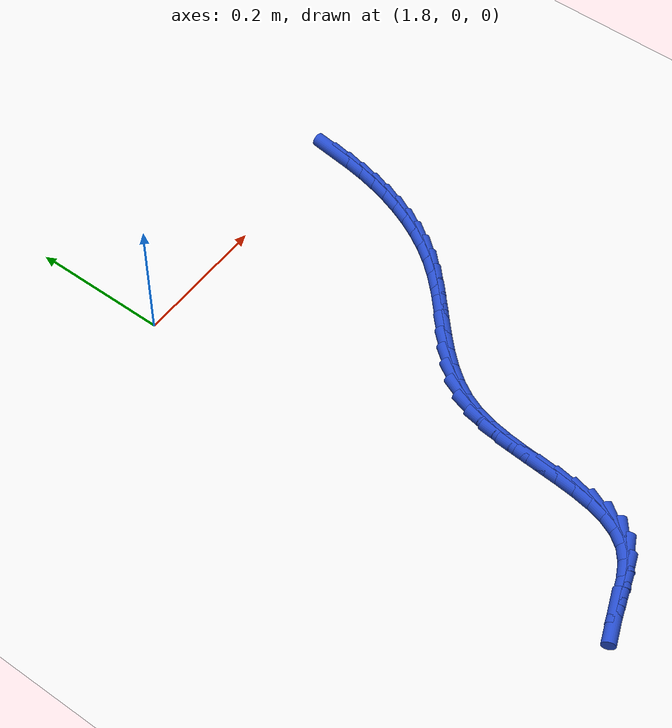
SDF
<sdf version="1.6">
 <world name="default">
  <model name="ground_plane">
   <static>1</static>
   <link name="link">
    <collision name="collision">
     <geometry><plane><normal>0 0 1</normal><size>100 100</size></plane></geometry>
     <surface><friction><ode><mu>100</mu><mu2>50</mu2></ode></friction></surface>
    </collision>
    <visual name="visual">
     <cast_shadows>0</cast_shadows>
     <geometry><plane><normal>0 0 1</normal><size>100 100</size></plane></geometry>
     <material>
      <script><uri>file://media/materials/scripts/gazebo.material</uri><name>Gazebo/WhiteGlow</name></script>
     </material>
    </visual>
   </link>
  </model>
  <model name="line">
   <link name="link_136">
    <pose>2.19558359753591 -0.015618624663382843 0.01 0 1.57 1.4524996347719075</pose>
    <collision name="collision">
     <geometry><cylinder><radius>0.01</radius><length>0.08</length></cylinder></geometry>
    </collision>
    <visual name="visual">
     <material>
      <script><name>Gazebo/Blue</name><uri>file://media/materials/scripts/gazebo.material</uri></script>
     </material>
     <geometry><cylinder><radius>0.01</radius><length>0.08</length></cylinder></geometry>
    </visual>
   </link>
   <link name="link_137">
    <pose>2.1923405038532535 -0.04290553715427792 0.01 0 1.57 1.4028530604011398</pose>
    <collision name="collision">
     <geometry><cylinder><radius>0.01</radius><length>0.08</length></cylinder></geometry>
    </collision>
    <visual name="visual">
     <material>
      <script><name>Gazebo/Blue</name><uri>file://media/materials/scripts/gazebo.material</uri></script>
     </material>
     <geometry><cylinder><radius>0.01</radius><length>0.08</length></cylinder></geometry>
    </visual>
   </link>
   <link name="link_138">
    <pose>2.187783177100298 -0.06978604085404472 0.01 0 1.57 1.3496142610618556</pose>
    <collision name="collision">
     <geometry><cylinder><radius>0.01</radius><length>0.08</length></cylinder></geometry>
    </collision>
    <visual name="visual">
     <material>
      <script><name>Gazebo/Blue</name><uri>file://media/materials/scripts/gazebo.material</uri></script>
     </material>
     <geometry><cylinder><radius>0.01</radius><length>0.08</length></cylinder></geometry>
    </visual>
   </link>
   <link name="link_139">
    <pose>2.1818526845986206 -0.09616008728448848 0.01 0 1.57 1.2924810082934508</pose>
    <collision name="collision">
     <geometry><cylinder><radius>0.01</radius><length>0.08</length></cylinder></geometry>
    </collision>
    <visual name="visual">
     <material>
      <script><name>Gazebo/Blue</name><uri>file://media/materials/scripts/gazebo.material</uri></script>
     </material>
     <geometry><cylinder><radius>0.01</radius><length>0.08</length></cylinder></geometry>
    </visual>
   </link>
   <link name="link_140">
    <pose>2.174490093669799 -0.12192762796741696 0.01 0 1.57 1.231199729762752</pose>
    <collision name="collision">
     <geometry><cylinder><radius>0.01</radius><length>0.08</length></cylinder></geometry>
    </collision>
    <visual name="visual">
     <material>
      <script><name>Gazebo/Blue</name><uri>file://media/materials/scripts/gazebo.material</uri></script>
     </material>
     <geometry><cylinder><radius>0.01</radius><length>0.08</length></cylinder></geometry>
    </visual>
   </link>
   <link name="link_141">
    <pose>2.165636471635413 -0.14698861442463787 0.01 0 1.57 1.1655963210874438</pose>
    <collision name="collision">
     <geometry><cylinder><radius>0.01</radius><length>0.08</length></cylinder></geometry>
    </collision>
    <visual name="visual">
     <material>
      <script><name>Gazebo/Blue</name><uri>file://media/materials/scripts/gazebo.material</uri></script>
     </material>
     <geometry><cylinder><radius>0.01</radius><length>0.08</length></cylinder></geometry>
    </visual>
   </link>
   <link name="link_142">
    <pose>2.155232885817041 -0.1712429981779567 0.01 0 1.57 1.0956136193510864</pose>
    <collision name="collision">
     <geometry><cylinder><radius>0.01</radius><length>0.08</length></cylinder></geometry>
    </collision>
    <visual name="visual">
     <material>
      <script><name>Gazebo/Blue</name><uri>file://media/materials/scripts/gazebo.material</uri></script>
     </material>
     <geometry><cylinder><radius>0.01</radius><length>0.08</length></cylinder></geometry>
    </visual>
   </link>
   <link name="link_143">
    <pose>2.14322040353626 -0.19459073074918187 0.01 0 1.57 1.02135256360449</pose>
    <collision name="collision">
     <geometry><cylinder><radius>0.01</radius><length>0.08</length></cylinder></geometry>
    </collision>
    <visual name="visual">
     <material>
      <script><name>Gazebo/Blue</name><uri>file://media/materials/scripts/gazebo.material</uri></script>
     </material>
     <geometry><cylinder><radius>0.01</radius><length>0.08</length></cylinder></geometry>
    </visual>
   </link>
   <link name="link_144">
    <pose>2.1295400921146483 -0.2169317636601188 0.01 0 1.57 0.9431111247488517</pose>
    <collision name="collision">
     <geometry><cylinder><radius>0.01</radius><length>0.08</length></cylinder></geometry>
    </collision>
    <visual name="visual">
     <material>
      <script><name>Gazebo/Blue</name><uri>file://media/materials/scripts/gazebo.material</uri></script>
     </material>
     <geometry><cylinder><radius>0.01</radius><length>0.08</length></cylinder></geometry>
    </visual>
   </link>
   <link name="link_145">
    <pose>2.114133018873785 -0.238166048432576 0.01 0 1.57 0.8619540318517869</pose>
    <collision name="collision">
     <geometry><cylinder><radius>0.01</radius><length>0.08</length></cylinder></geometry>
    </collision>
    <visual name="visual">
     <material>
      <script><name>Gazebo/Blue</name><uri>file://media/materials/scripts/gazebo.material</uri></script>
     </material>
     <geometry><cylinder><radius>0.01</radius><length>0.08</length></cylinder></geometry>
    </visual>
   </link>
   <link name="link_146">
    <pose>2.0969516317332553 -0.25820223887145366 0.01 0 1.57 0.7924416284773659</pose>
    <collision name="collision">
     <geometry><cylinder><radius>0.01</radius><length>0.08</length></cylinder></geometry>
    </collision>
    <visual name="visual">
     <material>
      <script><name>Gazebo/Blue</name><uri>file://media/materials/scripts/gazebo.material</uri></script>
     </material>
     <geometry><cylinder><radius>0.01</radius><length>0.08</length></cylinder></geometry>
    </visual>
   </link>
   <link name="link_147">
    <pose>2.078244134343805 -0.27717514122968734 0.01 0 1.57 0.7489665713247079</pose>
    <collision name="collision">
     <geometry><cylinder><radius>0.01</radius><length>0.08</length></cylinder></geometry>
    </collision>
    <visual name="visual">
     <material>
      <script><name>Gazebo/Blue</name><uri>file://media/materials/scripts/gazebo.material</uri></script>
     </material>
     <geometry><cylinder><radius>0.01</radius><length>0.08</length></cylinder></geometry>
    </visual>
   </link>
   <link name="link_148">
    <pose>2.058574708271357 -0.2954611772946288 0.01 0 1.57 0.7311821837393285</pose>
    <collision name="collision">
     <geometry><cylinder><radius>0.01</radius><length>0.08</length></cylinder></geometry>
    </collision>
    <visual name="visual">
     <material>
      <script><name>Gazebo/Blue</name><uri>file://media/materials/scripts/gazebo.material</uri></script>
     </material>
     <geometry><cylinder><radius>0.01</radius><length>0.08</length></cylinder></geometry>
    </visual>
   </link>
   <link name="link_149">
    <pose>2.038522965663412 -0.3134485679953926 0.01 0 1.57 0.738572030786506</pose>
    <collision name="collision">
     <geometry><cylinder><radius>0.01</radius><length>0.08</length></cylinder></geometry>
    </collision>
    <visual name="visual">
     <material>
      <script><name>Gazebo/Blue</name><uri>file://media/materials/scripts/gazebo.material</uri></script>
     </material>
     <geometry><cylinder><radius>0.01</radius><length>0.08</length></cylinder></geometry>
    </visual>
   </link>
   <link name="link_150">
    <pose>2.0186685186674715 -0.3315255342610915 0.01 0 1.57 0.7715073614926533</pose>
    <collision name="collision">
     <geometry><cylinder><radius>0.01</radius><length>0.08</length></cylinder></geometry>
    </collision>
    <visual name="visual">
     <material>
      <script><name>Gazebo/Blue</name><uri>file://media/materials/scripts/gazebo.material</uri></script>
     </material>
     <geometry><cylinder><radius>0.01</radius><length>0.08</length></cylinder></geometry>
    </visual>
   </link>
   <link name="link_151">
    <pose>1.9995909794310376 -0.3500802970208393 0.01 0 1.57 0.8311303500965728</pose>
    <collision name="collision">
     <geometry><cylinder><radius>0.01</radius><length>0.08</length></cylinder></geometry>
    </collision>
    <visual name="visual">
     <material>
      <script><name>Gazebo/Blue</name><uri>file://media/materials/scripts/gazebo.material</uri></script>
     </material>
     <geometry><cylinder><radius>0.01</radius><length>0.08</length></cylinder></geometry>
    </visual>
   </link>
   <link name="link_152">
    <pose>1.9818699601016099 -0.3695010772037504 0.01 0 1.57 0.9187260089979615</pose>
    <collision name="collision">
     <geometry><cylinder><radius>0.01</radius><length>0.08</length></cylinder></geometry>
    </collision>
    <visual name="visual">
     <material>
      <script><name>Gazebo/Blue</name><uri>file://media/materials/scripts/gazebo.material</uri></script>
     </material>
     <geometry><cylinder><radius>0.01</radius><length>0.08</length></cylinder></geometry>
    </visual>
   </link>
   <link name="link_153">
    <pose>1.9660850728266897 -0.39017609573893697 0.01 0 1.57 1.0343843272036748</pose>
    <collision name="collision">
     <geometry><cylinder><radius>0.01</radius><length>0.08</length></cylinder></geometry>
    </collision>
    <visual name="visual">
     <material>
      <script><name>Gazebo/Blue</name><uri>file://media/materials/scripts/gazebo.material</uri></script>
     </material>
     <geometry><cylinder><radius>0.01</radius><length>0.08</length></cylinder></geometry>
    </visual>
   </link>
   <link name="link_154">
    <pose>1.9528159297537786 -0.41249357355551397 0.01 0 1.57 1.1747235711759585</pose>
    <collision name="collision">
     <geometry><cylinder><radius>0.01</radius><length>0.08</length></cylinder></geometry>
    </collision>
    <visual name="visual">
     <material>
      <script><name>Gazebo/Blue</name><uri>file://media/materials/scripts/gazebo.material</uri></script>
     </material>
     <geometry><cylinder><radius>0.01</radius><length>0.08</length></cylinder></geometry>
    </visual>
   </link>
   <link name="link_155">
    <pose>1.9426360467961221 -0.43683736599298306 0.01 0 1.57 1.311888383112559</pose>
    <collision name="collision">
     <geometry><cylinder><radius>0.01</radius><length>0.08</length></cylinder></geometry>
    </collision>
    <visual name="visual">
     <material>
      <script><name>Gazebo/Blue</name><uri>file://media/materials/scripts/gazebo.material</uri></script>
     </material>
     <geometry><cylinder><radius>0.01</radius><length>0.08</length></cylinder></geometry>
    </visual>
   </link>
   <link name="link_156">
    <pose>1.9356408654449437 -0.46324897331683046 0.01 0 1.57 1.410083619373869</pose>
    <collision name="collision">
     <geometry><cylinder><radius>0.01</radius><length>0.08</length></cylinder></geometry>
    </collision>
    <visual name="visual">
     <material>
      <script><name>Gazebo/Blue</name><uri>file://media/materials/scripts/gazebo.material</uri></script>
     </material>
     <geometry><cylinder><radius>0.01</radius><length>0.08</length></cylinder></geometry>
    </visual>
   </link>
   <link name="link_157">
    <pose>1.9311118139520755 -0.4911869707290223 0.01 0 1.57 1.4720131761094335</pose>
    <collision name="collision">
     <geometry><cylinder><radius>0.01</radius><length>0.08</length></cylinder></geometry>
    </collision>
    <visual name="visual">
     <material>
      <script><name>Gazebo/Blue</name><uri>file://media/materials/scripts/gazebo.material</uri></script>
     </material>
     <geometry><cylinder><radius>0.01</radius><length>0.08</length></cylinder></geometry>
    </visual>
   </link>
   <link name="link_158">
    <pose>1.9282510114805151 -0.5200531392009066 0.01 0 1.57 1.5027270379660511</pose>
    <collision name="collision">
     <geometry><cylinder><radius>0.01</radius><length>0.08</length></cylinder></geometry>
    </collision>
    <visual name="visual">
     <material>
      <script><name>Gazebo/Blue</name><uri>file://media/materials/scripts/gazebo.material</uri></script>
     </material>
     <geometry><cylinder><radius>0.01</radius><length>0.08</length></cylinder></geometry>
    </visual>
   </link>
   <link name="link_159">
    <pose>1.9262605771932615 -0.549249259703828 0.01 0 1.57 1.5045921749185176</pose>
    <collision name="collision">
     <geometry><cylinder><radius>0.01</radius><length>0.08</length></cylinder></geometry>
    </collision>
    <visual name="visual">
     <material>
      <script><name>Gazebo/Blue</name><uri>file://media/materials/scripts/gazebo.material</uri></script>
     </material>
     <geometry><cylinder><radius>0.01</radius><length>0.08</length></cylinder></geometry>
    </visual>
   </link>
   <link name="link_160">
    <pose>1.9243426302533102 -0.5781771132091331 0.01 0 1.57 1.4768749115149884</pose>
    <collision name="collision">
     <geometry><cylinder><radius>0.01</radius><length>0.08</length></cylinder></geometry>
    </collision>
    <visual name="visual">
     <material>
      <script><name>Gazebo/Blue</name><uri>file://media/materials/scripts/gazebo.material</uri></script>
     </material>
     <geometry><cylinder><radius>0.01</radius><length>0.08</length></cylinder></geometry>
    </visual>
   </link>
   <link name="link_161">
    <pose>1.92169928982366 -0.6062384806881695 0.01 0 1.57 1.41540005560383</pose>
    <collision name="collision">
     <geometry><cylinder><radius>0.01</radius><length>0.08</length></cylinder></geometry>
    </collision>
    <visual name="visual">
     <material>
      <script><name>Gazebo/Blue</name><uri>file://media/materials/scripts/gazebo.material</uri></script>
     </material>
     <geometry><cylinder><radius>0.01</radius><length>0.08</length></cylinder></geometry>
    </visual>
   </link>
   <link name="link_162">
    <pose>1.9175326750673076 -0.6328351431122814 0.01 0 1.57 1.312271326901062</pose>
    <collision name="collision">
     <geometry><cylinder><radius>0.01</radius><length>0.08</length></cylinder></geometry>
    </collision>
    <visual name="visual">
     <material>
      <script><name>Gazebo/Blue</name><uri>file://media/materials/scripts/gazebo.material</uri></script>
     </material>
     <geometry><cylinder><radius>0.01</radius><length>0.08</length></cylinder></geometry>
    </visual>
   </link>
   <link name="link_163">
    <pose>1.9110449051472502 -0.6573688814528162 0.01 0 1.57 1.1569460133797418</pose>
    <collision name="collision">
     <geometry><cylinder><radius>0.01</radius><length>0.08</length></cylinder></geometry>
    </collision>
    <visual name="visual">
     <material>
      <script><name>Gazebo/Blue</name><uri>file://media/materials/scripts/gazebo.material</uri></script>
     </material>
     <geometry><cylinder><radius>0.01</radius><length>0.08</length></cylinder></geometry>
    </visual>
   </link>
   <link name="link_164">
    <pose>1.901438099226487 -0.6792414766811196 0.01 0 1.57 0.9424631211647253</pose>
    <collision name="collision">
     <geometry><cylinder><radius>0.01</radius><length>0.08</length></cylinder></geometry>
    </collision>
    <visual name="visual">
     <material>
      <script><name>Gazebo/Blue</name><uri>file://media/materials/scripts/gazebo.material</uri></script>
     </material>
     <geometry><cylinder><radius>0.01</radius><length>0.08</length></cylinder></geometry>
    </visual>
   </link>
   <link name="link_165">
    <pose>1.8879143764680129 -0.6978547097685383 0.01 0 1.57 0.6824676985970363</pose>
    <collision name="collision">
     <geometry><cylinder><radius>0.01</radius><length>0.08</length></cylinder></geometry>
    </collision>
    <visual name="visual">
     <material>
      <script><name>Gazebo/Blue</name><uri>file://media/materials/scripts/gazebo.material</uri></script>
     </material>
     <geometry><cylinder><radius>0.01</radius><length>0.08</length></cylinder></geometry>
    </visual>
   </link>
   <link name="link_166">
    <pose>1.869716557122223 -0.7126450047846278 0.01 0 1.57 0.4681014522026776</pose>
    <collision name="collision">
     <geometry><cylinder><radius>0.01</radius><length>0.08</length></cylinder></geometry>
    </collision>
    <visual name="visual">
     <material>
      <script><name>Gazebo/Blue</name><uri>file://media/materials/scripts/gazebo.material</uri></script>
     </material>
     <geometry><cylinder><radius>0.01</radius><length>0.08</length></cylinder></geometry>
    </visual>
   </link>
   <link name="link_167">
    <pose>1.8472244611816813 -0.7240165534005897 0.01 0 1.57 0.35880627357916034</pose>
    <collision name="collision">
     <geometry><cylinder><radius>0.01</radius><length>0.08</length></cylinder></geometry>
    </collision>
    <visual name="visual">
     <material>
      <script><name>Gazebo/Blue</name><uri>file://media/materials/scripts/gazebo.material</uri></script>
     </material>
     <geometry><cylinder><radius>0.01</radius><length>0.08</length></cylinder></geometry>
    </visual>
   </link>
   <link name="link_168">
    <pose>1.8220791516257802 -0.7334470656493078 0.01 0 1.57 0.33294529045571886</pose>
    <collision name="collision">
     <geometry><cylinder><radius>0.01</radius><length>0.08</length></cylinder></geometry>
    </collision>
    <visual name="visual">
     <material>
      <script><name>Gazebo/Blue</name><uri>file://media/materials/scripts/gazebo.material</uri></script>
     </material>
     <geometry><cylinder><radius>0.01</radius><length>0.08</length></cylinder></geometry>
    </visual>
   </link>
   <link name="link_169">
    <pose>1.7959873249742624 -0.742470116144439 0.01 0 1.57 0.38017754806134074</pose>
    <collision name="collision">
     <geometry><cylinder><radius>0.01</radius><length>0.08</length></cylinder></geometry>
    </collision>
    <visual name="visual">
     <material>
      <script><name>Gazebo/Blue</name><uri>file://media/materials/scripts/gazebo.material</uri></script>
     </material>
     <geometry><cylinder><radius>0.01</radius><length>0.08</length></cylinder></geometry>
    </visual>
   </link>
  </model>
 </world>
</sdf>
